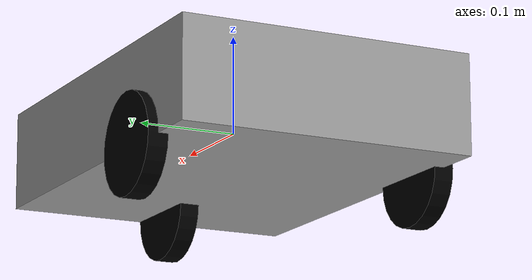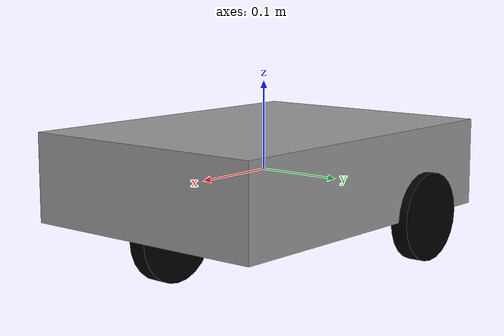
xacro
<?xml version="1.0"?>
<robot name="three_wheel_bot"
       xmlns:xacro="http://ros.org/wiki/xacro">

  <!-- parameters -->
  <xacro:property name="wheel_radius" value="0.05"/>
  <xacro:property name="wheel_base"   value="0.3"/>

  <!-- Base link -->
  <link name="base_link">
    <inertial>
      <mass value="5.0"/>
      <origin xyz="0 0 0" rpy="0 0 0"/>
      <inertia ixx="0.1" iyy="0.1" izz="0.1"
               ixy="0" ixz="0" iyz="0"/>
    </inertial>
    <visual>
      <origin xyz="0 0 0" rpy="0 0 0"/>
      <geometry>
        <box size="0.4 0.3 0.1"/>
      </geometry>
      <material name="Grey"/>
    </visual>
    <collision>
      <origin xyz="0 0 0" rpy="0 0 0"/>
      <geometry>
        <box size="0.4 0.3 0.1"/>
      </geometry>
    </collision>
  </link>

  <!-- Wheel macro -->
  <xacro:macro name="wheel" params="name x y">
    <link name="${name}_wheel_link">
      <inertial>
        <mass value="0.1"/>
        <origin xyz="0 0 0" rpy="0 0 0"/>
        <inertia ixx="0.001" iyy="0.001" izz="0.001" ixy="0" ixz="0" iyz="0"/>
      </inertial>
      <visual>
        <origin xyz="0 0 0" rpy="1.5708 0 0"/>
        <geometry>
          <cylinder radius="${wheel_radius}" length="0.02"/>
        </geometry>
        <material name="Black">
          <color rgba="0 0 0 1"/>
        </material>
      </visual>
      <collision>
        <origin xyz="0 0 0" rpy="1.5708 0 0"/>
        <geometry>
          <cylinder radius="${wheel_radius}" length="0.02"/>
        </geometry>
      </collision>
    </link>

    <joint name="${name}_wheel_joint" type="continuous">
      <parent link="base_link"/>
      <child  link="${name}_wheel_link"/>
      <origin xyz="${x} ${y} -0.05" rpy="0 0 0"/>
      <axis  xyz="0 1 0"/>
    </joint>
  </xacro:macro>

  <!-- Instantiate the three wheels -->
  <xacro:wheel name="left"  x="-0.1"              y="${wheel_base/2}"/>
  <xacro:wheel name="right" x="-0.1"              y="${-wheel_base/2}"/>
  <xacro:wheel name="back"  x="${wheel_base-0.15}" y="0"/>

  <!-- Gazebo diff_drive plugin -->
  <gazebo>
    <plugin name="diff_drive" filename="libgazebo_ros_diff_drive.so">
      <ros>
        <namespace>/</namespace>
      </ros>
      <cmdVelTopic>/cmd_vel</cmdVelTopic>
      <odometryTopic>/odom</odometryTopic>
      <odometryTopic>odom</odometryTopic>
      <robotBaseFrame>base_link</robotBaseFrame>
      <leftJoint>left_wheel_joint</leftJoint>
      <rightJoint>right_wheel_joint</rightJoint>
      <updateRate>50</updateRate>
      <wheelSeparation>${wheel_base*2}</wheelSeparation>
      <wheelRadius>${wheel_radius}</wheelRadius>
    </plugin>
  </gazebo>

</robot>
